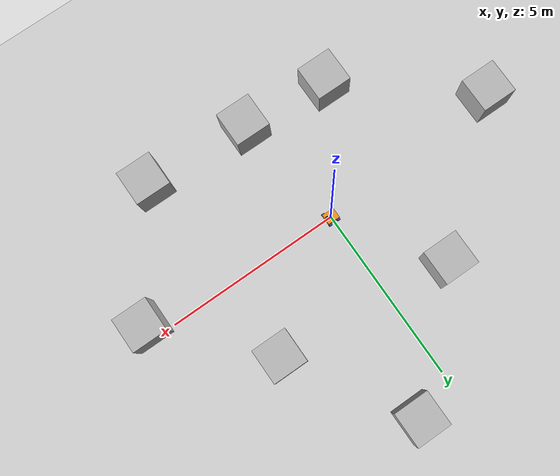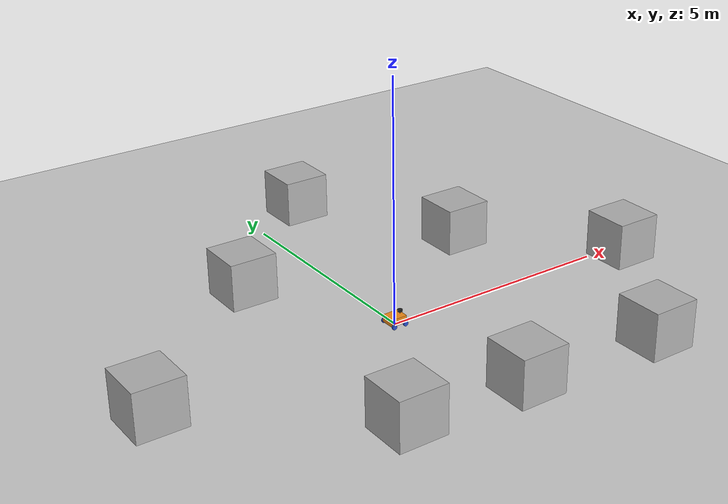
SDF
<sdf version='1.10'>
  <world name='empty'>
    <physics name='1ms' type='ignored'>
      <max_step_size>0.001</max_step_size>
      <real_time_factor>1</real_time_factor>
      <real_time_update_rate>1000</real_time_update_rate>
    </physics>
    <plugin name='gz::sim::systems::Physics' filename='gz-sim-physics-system'/>
    <plugin name='gz::sim::systems::UserCommands' filename='gz-sim-user-commands-system'/>
    <plugin name='gz::sim::systems::SceneBroadcaster' filename='gz-sim-scene-broadcaster-system'/>
    <plugin name='gz::sim::systems::Sensors' filename='gz-sim-sensors-system'>
      <render_engine>ogre2</render_engine>
    </plugin>
    <plugin name='gz::sim::systems::Contact' filename='gz-sim-contact-system'/>
    <gravity>0 0 -9.8000000000000007</gravity>
    <magnetic_field>5.5644999999999998e-06 2.2875799999999999e-05 -4.2388400000000002e-05</magnetic_field>
    <atmosphere type='adiabatic'/>
    <scene>
      <ambient>0.400000006 0.400000006 0.400000006 1</ambient>
      <background>0.699999988 0.699999988 0.699999988 1</background>
      <shadows>true</shadows>
    </scene>
    <model name='ground_plane'>
      <static>true</static>
      <link name='link'>
        <collision name='collision'>
          <geometry>
            <plane>
              <normal>0 0 1</normal>
              <size>100 100</size>
            </plane>
          </geometry>
          <surface>
            <friction>
              <ode/>
            </friction>
            <bounce/>
            <contact/>
          </surface>
        </collision>
        <visual name='visual'>
          <geometry>
            <plane>
              <normal>0 0 1</normal>
              <size>100 100</size>
            </plane>
          </geometry>
          <material>
            <ambient>0.800000012 0.800000012 0.800000012 1</ambient>
            <diffuse>0.800000012 0.800000012 0.800000012 1</diffuse>
            <specular>0.800000012 0.800000012 0.800000012 1</specular>
          </material>
        </visual>
        <pose>0 0 0 0 0 0</pose>
        <inertial>
          <pose>0 0 0 0 0 0</pose>
          <mass>1</mass>
          <inertia>
            <ixx>1</ixx>
            <ixy>0</ixy>
            <ixz>0</ixz>
            <iyy>1</iyy>
            <iyz>0</iyz>
            <izz>1</izz>
          </inertia>
        </inertial>
        <enable_wind>false</enable_wind>
      </link>
      <pose>0 0 0 0 0 0</pose>
      <self_collide>false</self_collide>
    </model>
    <model name='my_robot'>
      <link name='base_link'>
        <inertial>
          <pose>0.020333333333333339 0 0.097833333333333342 0 0 0</pose>
          <mass>0.59999999999999998</mass>
          <inertia>
            <ixx>0.0063274166666666661</ixx>
            <ixy>0</ixy>
            <ixz>-0.0013928333333333329</ixz>
            <iyy>0.0089219166666666683</iyy>
            <iyz>0</iyz>
            <izz>0.010219499999999999</izz>
          </inertia>
        </inertial>
        <collision name='base_link_fixed_joint_lump__chassis_collision'>
          <pose>0 0 0.074999999999999997 0 0 0</pose>
          <geometry>
            <box>
              <size>0.34999999999999998 0.29999999999999999 0.14999999999999999</size>
            </box>
          </geometry>
          <surface>
            <contact>
              <ode/>
            </contact>
            <friction>
              <ode/>
            </friction>
            <bounce/>
          </surface>
        </collision>
        <collision name='base_link_fixed_joint_lump__laser_frame_collision_1'>
          <pose>0.122 0 0.21199999999999999 0 0 0</pose>
          <geometry>
            <cylinder>
              <length>0.040000000000000001</length>
              <radius>0.050000000000000003</radius>
            </cylinder>
          </geometry>
          <surface>
            <contact>
              <ode/>
            </contact>
            <friction>
              <ode/>
            </friction>
            <bounce/>
          </surface>
        </collision>
        <visual name='base_link_fixed_joint_lump__chassis_visual'>
          <pose>0 0 0.074999999999999997 0 0 0</pose>
          <geometry>
            <box>
              <size>0.34999999999999998 0.29999999999999999 0.14999999999999999</size>
            </box>
          </geometry>
          <material>
            <script>
              <name>Gazebo/Orange</name>
              <uri>file://media/materials/scripts/gazebo.material</uri>
            </script>
            <diffuse>1 0.37500003 0.125 1</diffuse>
            <ambient>1 0.37500003 0.125 1</ambient>
          </material>
        </visual>
        <visual name='base_link_fixed_joint_lump__laser_frame_visual_1'>
          <pose>0.122 0 0.21199999999999999 0 0 0</pose>
          <geometry>
            <cylinder>
              <length>0.040000000000000001</length>
              <radius>0.050000000000000003</radius>
            </cylinder>
          </geometry>
          <material>
            <script>
              <name>Gazebo/Black</name>
              <uri>file://media/materials/scripts/gazebo.material</uri>
            </script>
            <diffuse>0 0 0 1</diffuse>
            <ambient>0 0 0 1</ambient>
          </material>
        </visual>
        <visual name='base_link_fixed_joint_lump__laser_frame_visual_2'>
          <pose>0.122 0 0.16200000000000001 0 0 0</pose>
          <geometry>
            <cylinder>
              <length>0.10000000000000001</length>
              <radius>0.01</radius>
            </cylinder>
          </geometry>
          <material>
            <script>
              <name>Gazebo/Black</name>
              <uri>file://media/materials/scripts/gazebo.material</uri>
            </script>
            <diffuse>0 0 0 1</diffuse>
            <ambient>0 0 0 1</ambient>
          </material>
        </visual>
        <sensor name='laser' type='gpu_lidar'>
          <pose>0.122 0 0.21199999999999999 0 0 0</pose>
          <topic>scan</topic>
          <update_rate>10</update_rate>
          <enable_metrics>false</enable_metrics>
          <lidar>
            <scan>
              <horizontal>
                <samples>360</samples>
                <resolution>1</resolution>
                <min_angle>-3.1400000000000001</min_angle>
                <max_angle>3.1400000000000001</max_angle>
              </horizontal>
              <vertical>
                <samples>1</samples>
                <min_angle>0</min_angle>
                <max_angle>0</max_angle>
                <resolution>1</resolution>
              </vertical>
            </scan>
            <range>
              <min>0.29999999999999999</min>
              <max>12</max>
              <resolution>0</resolution>
            </range>
            <noise>
              <type>none</type>
              <mean>0</mean>
              <stddev>0</stddev>
            </noise>
            <visibility_mask>4294967295</visibility_mask>
          </lidar>
        </sensor>
        <pose>0 0 0 0 0 0</pose>
        <enable_wind>false</enable_wind>
      </link>
      <joint name='front_left_wheel_joint' type='revolute'>
        <pose>0 0 0 0 0 0</pose>
        <parent>base_link</parent>
        <child>front_left_wheel</child>
        <axis>
          <xyz>0 0 1</xyz>
          <limit>
            <lower>-inf</lower>
            <upper>inf</upper>
            <effort>inf</effort>
            <velocity>inf</velocity>
            <stiffness>100000000</stiffness>
            <dissipation>1</dissipation>
          </limit>
          <dynamics>
            <spring_reference>0</spring_reference>
            <spring_stiffness>0</spring_stiffness>
            <damping>0</damping>
            <friction>0</friction>
          </dynamics>
        </axis>
      </joint>
      <link name='front_left_wheel'>
        <pose>0.13 0.17499999999999999 -6.9388939039072284e-18 -1.5707963267948959 3.0608326840022848e-18 4.4950459759702601e-26</pose>
        <inertial>
          <pose>0 0 0 0 0 0</pose>
          <mass>0.10000000000000001</mass>
          <inertia>
            <ixx>8.3333333333333344e-05</ixx>
            <ixy>0</ixy>
            <ixz>0</ixz>
            <iyy>8.3333333333333344e-05</iyy>
            <iyz>0</iyz>
            <izz>0.000125</izz>
          </inertia>
        </inertial>
        <collision name='front_left_wheel_collision'>
          <pose>0 0 0 0 0 0</pose>
          <geometry>
            <cylinder>
              <length>0.040000000000000001</length>
              <radius>0.050000000000000003</radius>
            </cylinder>
          </geometry>
          <surface>
            <contact>
              <ode/>
            </contact>
            <friction>
              <ode/>
            </friction>
            <bounce/>
          </surface>
        </collision>
        <visual name='front_left_wheel_visual'>
          <pose>0 0 0 0 0 0</pose>
          <geometry>
            <cylinder>
              <length>0.040000000000000001</length>
              <radius>0.050000000000000003</radius>
            </cylinder>
          </geometry>
          <material>
            <script>
              <name>Gazebo/Blue</name>
              <uri>file://media/materials/scripts/gazebo.material</uri>
            </script>
            <diffuse>0.25 0.25 1 1</diffuse>
            <ambient>0.25 0.25 1 1</ambient>
          </material>
        </visual>
        <enable_wind>false</enable_wind>
      </link>
      <joint name='front_right_wheel_joint' type='revolute'>
        <pose>0 0 0 0 0 0</pose>
        <parent>base_link</parent>
        <child>front_right_wheel</child>
        <axis>
          <xyz>0 0 -1</xyz>
          <limit>
            <lower>-inf</lower>
            <upper>inf</upper>
            <effort>inf</effort>
            <velocity>inf</velocity>
            <stiffness>100000000</stiffness>
            <dissipation>1</dissipation>
          </limit>
          <dynamics>
            <spring_reference>0</spring_reference>
            <spring_stiffness>0</spring_stiffness>
            <damping>0</damping>
            <friction>0</friction>
          </dynamics>
        </axis>
      </joint>
      <link name='front_right_wheel'>
        <pose>0.13 -0.17499999999999999 -6.9388939039072284e-18 1.5707963267948959 2.5853902985482044e-18 4.4950457063400679e-26</pose>
        <inertial>
          <pose>0 0 0 0 0 0</pose>
          <mass>0.10000000000000001</mass>
          <inertia>
            <ixx>8.3333333333333344e-05</ixx>
            <ixy>0</ixy>
            <ixz>0</ixz>
            <iyy>8.3333333333333344e-05</iyy>
            <iyz>0</iyz>
            <izz>0.000125</izz>
          </inertia>
        </inertial>
        <collision name='front_right_wheel_collision'>
          <pose>0 0 0 0 0 0</pose>
          <geometry>
            <cylinder>
              <length>0.040000000000000001</length>
              <radius>0.050000000000000003</radius>
            </cylinder>
          </geometry>
          <surface>
            <contact>
              <ode/>
            </contact>
            <friction>
              <ode/>
            </friction>
            <bounce/>
          </surface>
        </collision>
        <visual name='front_right_wheel_visual'>
          <pose>0 0 0 0 0 0</pose>
          <geometry>
            <cylinder>
              <length>0.040000000000000001</length>
              <radius>0.050000000000000003</radius>
            </cylinder>
          </geometry>
          <material>
            <script>
              <name>Gazebo/Blue</name>
              <uri>file://media/materials/scripts/gazebo.material</uri>
            </script>
            <diffuse>0.25 0.25 1 1</diffuse>
            <ambient>0.25 0.25 1 1</ambient>
          </material>
        </visual>
        <enable_wind>false</enable_wind>
      </link>
      <joint name='rear_left_wheel_joint' type='revolute'>
        <pose>0 0 0 0 0 0</pose>
        <parent>base_link</parent>
        <child>rear_left_wheel</child>
        <axis>
          <xyz>0 0 1</xyz>
          <limit>
            <lower>-inf</lower>
            <upper>inf</upper>
            <effort>inf</effort>
            <velocity>inf</velocity>
            <stiffness>100000000</stiffness>
            <dissipation>1</dissipation>
          </limit>
          <dynamics>
            <spring_reference>0</spring_reference>
            <spring_stiffness>0</spring_stiffness>
            <damping>0</damping>
            <friction>0</friction>
          </dynamics>
        </axis>
      </joint>
      <link name='rear_left_wheel'>
        <pose>-0.13 0.17499999999999999 6.9388939039072284e-18 -1.5707963267948959 2.5372599266818506e-18 4.4950459181923618e-26</pose>
        <inertial>
          <pose>0 0 0 0 0 0</pose>
          <mass>0.10000000000000001</mass>
          <inertia>
            <ixx>8.3333333333333344e-05</ixx>
            <ixy>0</ixy>
            <ixz>0</ixz>
            <iyy>8.3333333333333344e-05</iyy>
            <iyz>0</iyz>
            <izz>0.000125</izz>
          </inertia>
        </inertial>
        <collision name='rear_left_wheel_collision'>
          <pose>0 0 0 0 0 0</pose>
          <geometry>
            <cylinder>
              <length>0.040000000000000001</length>
              <radius>0.050000000000000003</radius>
            </cylinder>
          </geometry>
          <surface>
            <contact>
              <ode/>
            </contact>
            <friction>
              <ode/>
            </friction>
            <bounce/>
          </surface>
        </collision>
        <visual name='rear_left_wheel_visual'>
          <pose>0 0 0 0 0 0</pose>
          <geometry>
            <cylinder>
              <length>0.040000000000000001</length>
              <radius>0.050000000000000003</radius>
            </cylinder>
          </geometry>
          <material>
            <script>
              <name>Gazebo/Blue</name>
              <uri>file://media/materials/scripts/gazebo.material</uri>
            </script>
            <diffuse>0.25 0.25 1 1</diffuse>
            <ambient>0.25 0.25 1 1</ambient>
          </material>
        </visual>
        <enable_wind>false</enable_wind>
      </link>
      <joint name='rear_right_wheel_joint' type='revolute'>
        <pose>0 0 0 0 0 0</pose>
        <parent>base_link</parent>
        <child>rear_right_wheel</child>
        <axis>
          <xyz>0 0 -1</xyz>
          <limit>
            <lower>-inf</lower>
            <upper>inf</upper>
            <effort>inf</effort>
            <velocity>inf</velocity>
            <stiffness>100000000</stiffness>
            <dissipation>1</dissipation>
          </limit>
          <dynamics>
            <spring_reference>0</spring_reference>
            <spring_stiffness>0</spring_stiffness>
            <damping>0</damping>
            <friction>0</friction>
          </dynamics>
        </axis>
      </joint>
      <link name='rear_right_wheel'>
        <pose>-0.13 -0.17499999999999999 6.9388939039072284e-18 1.5707963267948959 2.6245811283089842e-18 -1.0127579803832451e-25</pose>
        <inertial>
          <pose>0 0 0 0 0 0</pose>
          <mass>0.10000000000000001</mass>
          <inertia>
            <ixx>8.3333333333333344e-05</ixx>
            <ixy>0</ixy>
            <ixz>0</ixz>
            <iyy>8.3333333333333344e-05</iyy>
            <iyz>0</iyz>
            <izz>0.000125</izz>
          </inertia>
        </inertial>
        <collision name='rear_right_wheel_collision'>
          <pose>0 0 0 0 0 0</pose>
          <geometry>
            <cylinder>
              <length>0.040000000000000001</length>
              <radius>0.050000000000000003</radius>
            </cylinder>
          </geometry>
          <surface>
            <contact>
              <ode/>
            </contact>
            <friction>
              <ode/>
            </friction>
            <bounce/>
          </surface>
        </collision>
        <visual name='rear_right_wheel_visual'>
          <pose>0 0 0 0 0 0</pose>
          <geometry>
            <cylinder>
              <length>0.040000000000000001</length>
              <radius>0.050000000000000003</radius>
            </cylinder>
          </geometry>
          <material>
            <script>
              <name>Gazebo/Blue</name>
              <uri>file://media/materials/scripts/gazebo.material</uri>
            </script>
            <diffuse>0.25 0.25 1 1</diffuse>
            <ambient>0.25 0.25 1 1</ambient>
          </material>
        </visual>
        <enable_wind>false</enable_wind>
      </link>
      <plugin name='gz_ros2_control::GazeboSimROS2ControlPlugin' filename='libgz_ros2_control-system.so'>
        <parameters>/home/umer/robot_ws/install/my_robot/share/my_robot/config/my_controllers.yaml</parameters>
      </plugin>
      <frame name='base_footprint_joint' attached_to='base_link'>
        <pose>0 0 0 0 0 0</pose>
      </frame>
      <frame name='base_footprint' attached_to='base_footprint_joint'>
        <pose>0 0 0 0 0 0</pose>
      </frame>
      <frame name='laser_joint' attached_to='chassis'>
        <pose>0.122 0 0.21199999999999999 0 0 0</pose>
      </frame>
      <frame name='laser_frame' attached_to='laser_joint'>
        <pose>0 0 0 0 0 0</pose>
      </frame>
      <frame name='chassis_joint' attached_to='base_link'>
        <pose>0 0 0 0 0 0</pose>
      </frame>
      <frame name='chassis' attached_to='chassis_joint'>
        <pose>0 0 0 0 0 0</pose>
      </frame>
      <pose>6.8159563999599975e-11 1.8956447206143719e-20 0.049999169484669037 -2.5239062023866659e-18 1.3631912262908628e-09 3.7738169607660029e-19</pose>
      <static>false</static>
      <self_collide>false</self_collide>
    </model>
    <model name='box'>
      <pose>3.1752654904861197 2.2708232205907795 0.49999999990199806 6.2287739151293738e-22 9.3279666454713669e-22 -3.6315533669320137e-22</pose>
      <link name='box_link'>
        <inertial>
          <inertia>
            <ixx>0.16666</ixx>
            <ixy>0</ixy>
            <ixz>0</ixz>
            <iyy>0.16666</iyy>
            <iyz>0</iyz>
            <izz>0.16666</izz>
          </inertia>
          <mass>1</mass>
          <pose>0 0 0 0 0 0</pose>
        </inertial>
        <collision name='box_collision'>
          <geometry>
            <box>
              <size>1 1 1</size>
            </box>
          </geometry>
          <surface>
            <friction>
              <ode/>
            </friction>
            <bounce/>
            <contact/>
          </surface>
        </collision>
        <visual name='box_visual'>
          <geometry>
            <box>
              <size>1 1 1</size>
            </box>
          </geometry>
          <material>
            <ambient>0.300000012 0.300000012 0.300000012 1</ambient>
            <diffuse>0.699999988 0.699999988 0.699999988 1</diffuse>
            <specular>1 1 1 1</specular>
          </material>
        </visual>
        <pose>0 0 0 0 0 0</pose>
        <enable_wind>false</enable_wind>
      </link>
      <static>false</static>
      <self_collide>false</self_collide>
    </model>
    <model name='box_0'>
      <pose>-1.7740625095713045 2.7339653051230854 0.49999999990199806 6.2287739151293738e-22 9.3279666454713669e-22 -3.6315533669320137e-22</pose>
      <link name='box_link'>
        <inertial>
          <inertia>
            <ixx>0.16666</ixx>
            <ixy>0</ixy>
            <ixz>0</ixz>
            <iyy>0.16666</iyy>
            <iyz>0</iyz>
            <izz>0.16666</izz>
          </inertia>
          <mass>1</mass>
          <pose>0 0 0 0 0 0</pose>
        </inertial>
        <collision name='box_collision'>
          <geometry>
            <box>
              <size>1 1 1</size>
            </box>
          </geometry>
          <surface>
            <friction>
              <ode/>
            </friction>
            <bounce/>
            <contact/>
          </surface>
        </collision>
        <visual name='box_visual'>
          <geometry>
            <box>
              <size>1 1 1</size>
            </box>
          </geometry>
          <material>
            <ambient>0.300000012 0.300000012 0.300000012 1</ambient>
            <diffuse>0.699999988 0.699999988 0.699999988 1</diffuse>
            <specular>1 1 1 1</specular>
          </material>
        </visual>
        <pose>0 0 0 0 0 0</pose>
        <enable_wind>false</enable_wind>
      </link>
      <static>false</static>
      <self_collide>false</self_collide>
    </model>
    <model name='box_1'>
      <pose>3.4836359605451737 -3.4661880250569048 0.49999999990199806 6.2287739151293738e-22 9.3279666454713669e-22 -3.6315533669320137e-22</pose>
      <link name='box_link'>
        <inertial>
          <inertia>
            <ixx>0.16666</ixx>
            <ixy>0</ixy>
            <ixz>0</ixz>
            <iyy>0.16666</iyy>
            <iyz>0</iyz>
            <izz>0.16666</izz>
          </inertia>
          <mass>1</mass>
          <pose>0 0 0 0 0 0</pose>
        </inertial>
        <collision name='box_collision'>
          <geometry>
            <box>
              <size>1 1 1</size>
            </box>
          </geometry>
          <surface>
            <friction>
              <ode/>
            </friction>
            <bounce/>
            <contact/>
          </surface>
        </collision>
        <visual name='box_visual'>
          <geometry>
            <box>
              <size>1 1 1</size>
            </box>
          </geometry>
          <material>
            <ambient>0.300000012 0.300000012 0.300000012 1</ambient>
            <diffuse>0.699999988 0.699999988 0.699999988 1</diffuse>
            <specular>1 1 1 1</specular>
          </material>
        </visual>
        <pose>0 0 0 0 0 0</pose>
        <enable_wind>false</enable_wind>
      </link>
      <static>false</static>
      <self_collide>false</self_collide>
    </model>
    <model name='box_2'>
      <pose>-1.9447563099616905 -3.1022367689286536 0.49999999990199806 6.2287739151293738e-22 9.3279666454713669e-22 -3.6315533669320137e-22</pose>
      <link name='box_link'>
        <inertial>
          <inertia>
            <ixx>0.16666</ixx>
            <ixy>0</ixy>
            <ixz>0</ixz>
            <iyy>0.16666</iyy>
            <iyz>0</iyz>
            <izz>0.16666</izz>
          </inertia>
          <mass>1</mass>
          <pose>0 0 0 0 0 0</pose>
        </inertial>
        <collision name='box_collision'>
          <geometry>
            <box>
              <size>1 1 1</size>
            </box>
          </geometry>
          <surface>
            <friction>
              <ode/>
            </friction>
            <bounce/>
            <contact/>
          </surface>
        </collision>
        <visual name='box_visual'>
          <geometry>
            <box>
              <size>1 1 1</size>
            </box>
          </geometry>
          <material>
            <ambient>0.300000012 0.300000012 0.300000012 1</ambient>
            <diffuse>0.699999988 0.699999988 0.699999988 1</diffuse>
            <specular>1 1 1 1</specular>
          </material>
        </visual>
        <pose>0 0 0 0 0 0</pose>
        <enable_wind>false</enable_wind>
      </link>
      <static>false</static>
      <self_collide>false</self_collide>
    </model>
    <model name='box_3'>
      <pose>0.50263683867714626 -3.2900883680785644 0.49999999990199806 6.2287739151293738e-22 9.3279666454713669e-22 -3.6315533669320137e-22</pose>
      <link name='box_link'>
        <inertial>
          <inertia>
            <ixx>0.16666</ixx>
            <ixy>0</ixy>
            <ixz>0</ixz>
            <iyy>0.16666</iyy>
            <iyz>0</iyz>
            <izz>0.16666</izz>
          </inertia>
          <mass>1</mass>
          <pose>0 0 0 0 0 0</pose>
        </inertial>
        <collision name='box_collision'>
          <geometry>
            <box>
              <size>1 1 1</size>
            </box>
          </geometry>
          <surface>
            <friction>
              <ode/>
            </friction>
            <bounce/>
            <contact/>
          </surface>
        </collision>
        <visual name='box_visual'>
          <geometry>
            <box>
              <size>1 1 1</size>
            </box>
          </geometry>
          <material>
            <ambient>0.300000012 0.300000012 0.300000012 1</ambient>
            <diffuse>0.699999988 0.699999988 0.699999988 1</diffuse>
            <specular>1 1 1 1</specular>
          </material>
        </visual>
        <pose>0 0 0 0 0 0</pose>
        <enable_wind>false</enable_wind>
      </link>
      <static>false</static>
      <self_collide>false</self_collide>
    </model>
    <model name='box_4'>
      <pose>5.6035431901804866 -0.36735684694244708 0.49999999990199806 6.2287739151293738e-22 9.3279666454713669e-22 -3.6315533669320137e-22</pose>
      <link name='box_link'>
        <inertial>
          <inertia>
            <ixx>0.16666</ixx>
            <ixy>0</ixy>
            <ixz>0</ixz>
            <iyy>0.16666</iyy>
            <iyz>0</iyz>
            <izz>0.16666</izz>
          </inertia>
          <mass>1</mass>
          <pose>0 0 0 0 0 0</pose>
        </inertial>
        <collision name='box_collision'>
          <geometry>
            <box>
              <size>1 1 1</size>
            </box>
          </geometry>
          <surface>
            <friction>
              <ode/>
            </friction>
            <bounce/>
            <contact/>
          </surface>
        </collision>
        <visual name='box_visual'>
          <geometry>
            <box>
              <size>1 1 1</size>
            </box>
          </geometry>
          <material>
            <ambient>0.300000012 0.300000012 0.300000012 1</ambient>
            <diffuse>0.699999988 0.699999988 0.699999988 1</diffuse>
            <specular>1 1 1 1</specular>
          </material>
        </visual>
        <pose>0 0 0 0 0 0</pose>
        <enable_wind>false</enable_wind>
      </link>
      <static>false</static>
      <self_collide>false</self_collide>
    </model>
    <model name='box_5'>
      <pose>1.1790846881782935 5.5425316122276653 0.49999999990199806 6.2287739151293738e-22 9.3279666454713669e-22 -3.6315533669320137e-22</pose>
      <link name='box_link'>
        <inertial>
          <inertia>
            <ixx>0.16666</ixx>
            <ixy>0</ixy>
            <ixz>0</ixz>
            <iyy>0.16666</iyy>
            <iyz>0</iyz>
            <izz>0.16666</izz>
          </inertia>
          <mass>1</mass>
          <pose>0 0 0 0 0 0</pose>
        </inertial>
        <collision name='box_collision'>
          <geometry>
            <box>
              <size>1 1 1</size>
            </box>
          </geometry>
          <surface>
            <friction>
              <ode/>
            </friction>
            <bounce/>
            <contact/>
          </surface>
        </collision>
        <visual name='box_visual'>
          <geometry>
            <box>
              <size>1 1 1</size>
            </box>
          </geometry>
          <material>
            <ambient>0.300000012 0.300000012 0.300000012 1</ambient>
            <diffuse>0.699999988 0.699999988 0.699999988 1</diffuse>
            <specular>1 1 1 1</specular>
          </material>
        </visual>
        <pose>0 0 0 0 0 0</pose>
        <enable_wind>false</enable_wind>
      </link>
      <static>false</static>
      <self_collide>false</self_collide>
    </model>
    <model name='box_6'>
      <pose>-5.3001239128058151 -0.35708681567743689 0.49999999990199806 6.2287739151293738e-22 9.3279666454713669e-22 -3.6315533669320137e-22</pose>
      <link name='box_link'>
        <inertial>
          <inertia>
            <ixx>0.16666</ixx>
            <ixy>0</ixy>
            <ixz>0</ixz>
            <iyy>0.16666</iyy>
            <iyz>0</iyz>
            <izz>0.16666</izz>
          </inertia>
          <mass>1</mass>
          <pose>0 0 0 0 0 0</pose>
        </inertial>
        <collision name='box_collision'>
          <geometry>
            <box>
              <size>1 1 1</size>
            </box>
          </geometry>
          <surface>
            <friction>
              <ode/>
            </friction>
            <bounce/>
            <contact/>
          </surface>
        </collision>
        <visual name='box_visual'>
          <geometry>
            <box>
              <size>1 1 1</size>
            </box>
          </geometry>
          <material>
            <ambient>0.300000012 0.300000012 0.300000012 1</ambient>
            <diffuse>0.699999988 0.699999988 0.699999988 1</diffuse>
            <specular>1 1 1 1</specular>
          </material>
        </visual>
        <pose>0 0 0 0 0 0</pose>
        <enable_wind>false</enable_wind>
      </link>
      <static>false</static>
      <self_collide>false</self_collide>
    </model>
    <light name='sun' type='directional'>
      <pose>0 0 10 0 0 0</pose>
      <cast_shadows>true</cast_shadows>
      <intensity>1</intensity>
      <direction>-0.5 0.10000000000000001 -0.90000000000000002</direction>
      <diffuse>0.800000012 0.800000012 0.800000012 1</diffuse>
      <specular>0.200000003 0.200000003 0.200000003 1</specular>
      <attenuation>
        <range>1000</range>
        <linear>0.01</linear>
        <constant>0.90000000000000002</constant>
        <quadratic>0.001</quadratic>
      </attenuation>
      <spot>
        <inner_angle>0</inner_angle>
        <outer_angle>0</outer_angle>
        <falloff>0</falloff>
      </spot>
    </light>
  </world>
</sdf>
